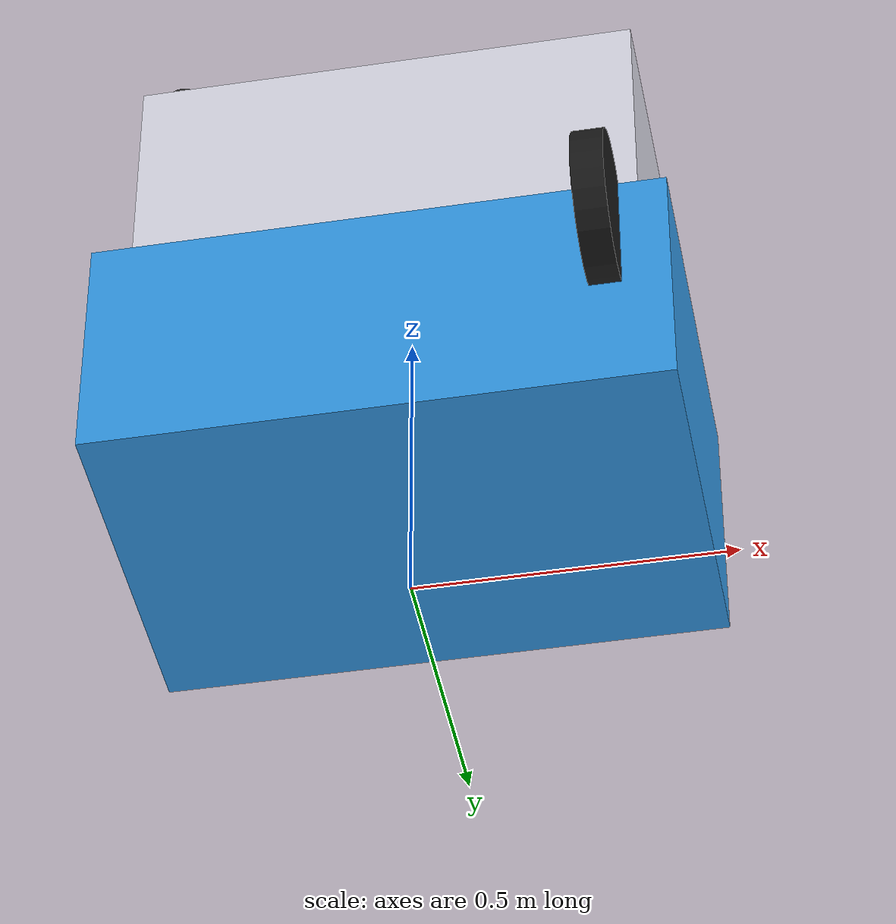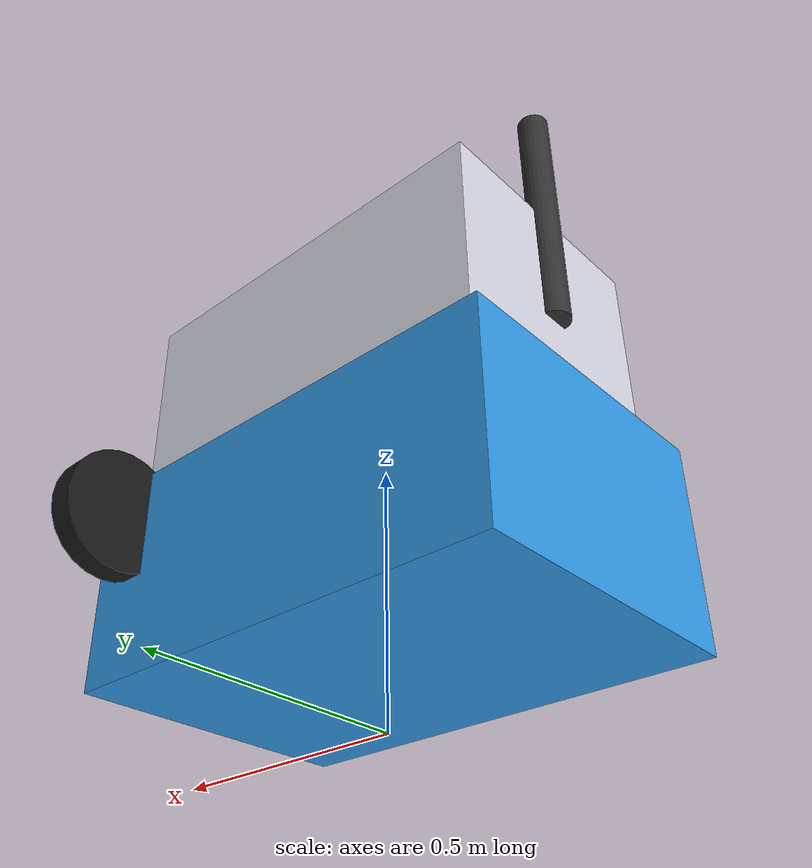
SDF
<?xml version="1.0" ?>
<sdf version="1.10">
  <model name="autocart">
    <pose>0 0 0.3 0 0 0</pose>
    <static>false</static>

    <!-- Base body -->
    <link name="base_link">
      <inertial>
        <mass>15.0</mass>
        <inertia>
          <ixx>1.0</ixx>
          <iyy>1.0</iyy>
          <izz>1.0</izz>
        </inertia>
      </inertial>
      <collision name="base_collision">
        <geometry>
          <box>
            <size>0.9 0.6 0.4</size>
          </box>
        </geometry>
        <surface>
          <friction>
            <ode>
              <mu>1.0</mu>
              <mu2>1.0</mu2>
            </ode>
          </friction>
        </surface>
      </collision>
      <visual name="base_visual">
        <geometry>
          <box>
            <size>0.9 0.6 0.4</size>
          </box>
        </geometry>
        <material>
          <ambient>0.2 0.5 0.8 1</ambient>
          <diffuse>0.2 0.6 0.9 1</diffuse>
        </material>
      </visual>

      <!-- Simple basket on top for looks -->
      <visual name="basket_visual">
        <pose>0 0 0.4 0 0 0</pose>
        <geometry>
          <box>
            <size>0.8 0.5 0.4</size>
          </box>
        </geometry>
        <material>
          <ambient>0.75 0.75 0.78 1</ambient>
          <diffuse>0.85 0.85 0.9 1</diffuse>
        </material>
      </visual>

      <!-- Handle bar -->
      <visual name="handle_visual">
        <pose>-0.4 0 0.6 0 0 0</pose>
        <geometry>
          <cylinder>
            <radius>0.03</radius>
            <length>0.5</length>
          </cylinder>
        </geometry>
        <material>
          <ambient>0.1 0.1 0.1 1</ambient>
          <diffuse>0.2 0.2 0.2 1</diffuse>
        </material>
      </visual>
    </link>

    <!-- Left wheel -->
    <link name="left_wheel_link">
      <!-- roll yaw pitch order = R P Y  -->
      <!-- We rotate pitch (middle value) by +1.5708 so the cylinder lies sideways -->
      <pose>0.35 0.35 0.10 0 1.5708 0</pose>
      <visual name="left_wheel_visual">
        <geometry>
          <cylinder>
            <radius>0.12</radius>
            <length>0.05</length>
          </cylinder>
        </geometry>
        <material>
          <diffuse>0.1 0.1 0.1 1</diffuse>
        </material>
      </visual>
      <collision name="left_wheel_collision">
        <geometry>
          <cylinder>
            <radius>0.12</radius>
            <length>0.05</length>
          </cylinder>
        </geometry>
      </collision>
    </link>

    <!-- Right wheel -->
    <link name="right_wheel_link">
      <pose>0.35 -0.35 0.10 0 1.5708 0</pose>
      <visual name="right_wheel_visual">
        <geometry>
          <cylinder>
            <radius>0.12</radius>
            <length>0.05</length>
          </cylinder>
        </geometry>
        <material>
          <diffuse>0.1 0.1 0.1 1</diffuse>
        </material>
      </visual>
      <collision name="right_wheel_collision">
        <geometry>
          <cylinder>
            <radius>0.12</radius>
            <length>0.05</length>
          </cylinder>
        </geometry>
      </collision>
    </link>

    <!-- Joints for wheels -->
    <joint name="left_wheel_joint" type="revolute">
      <parent>base_link</parent>
      <child>left_wheel_link</child>
      <pose>0 0 0 0 0 0</pose>
      <axis>
        <xyz>0 1 0</xyz>
        <limit>
          <lower>-1e16</lower>
          <upper>1e16</upper>
        </limit>
        <dynamics>
          <friction>0.0</friction>
        </dynamics>
      </axis>
    </joint>

    <joint name="right_wheel_joint" type="revolute">
      <parent>base_link</parent>
      <child>right_wheel_link</child>
      <pose>0 0 0 0 0 0</pose>
      <axis>
        <xyz>0 1 0</xyz>
        <limit>
          <lower>-1e16</lower>
          <upper>1e16</upper>
        </limit>
        <dynamics>
          <friction>0.0</friction>
        </dynamics>
      </axis>
    </joint>

    <!-- Differential drive plugin (Gazebo Harmonic) -->
    <plugin filename="gz-sim-diff-drive-system" name="gz::sim::systems::DiffDrive">
      <left_joint>left_wheel_joint</left_joint>
      <right_joint>right_wheel_joint</right_joint>

      <!-- geometry -->
      <wheel_separation>0.6</wheel_separation>
      <wheel_radius>0.15</wheel_radius>

      <!-- limits -->
      <max_linear_acceleration>2.0</max_linear_acceleration>
      <max_angular_acceleration>4.0</max_angular_acceleration>

      <!-- ROS / Gazebo topic interface -->
      <topic>cmd_vel</topic>
      <odom_topic>odom</odom_topic>
      <frame_id>odom</frame_id>
      <child_frame_id>base_link</child_frame_id>
      <odom_publisher_frequency>50</odom_publisher_frequency>
    </plugin>

  </model>
</sdf>
